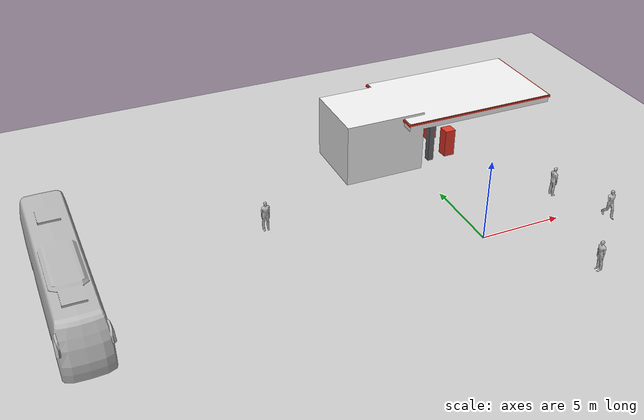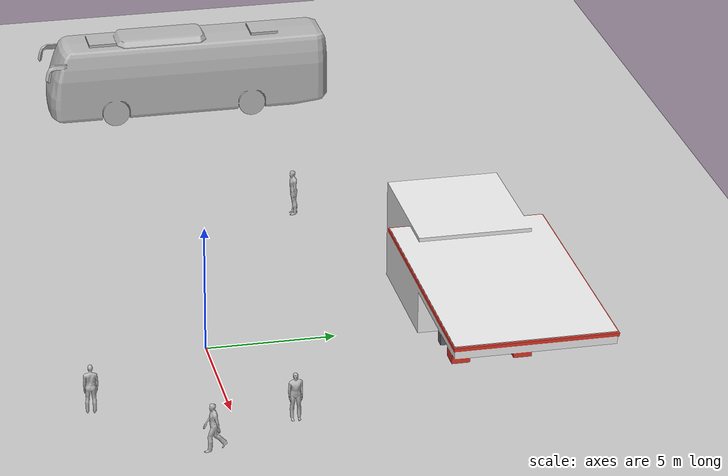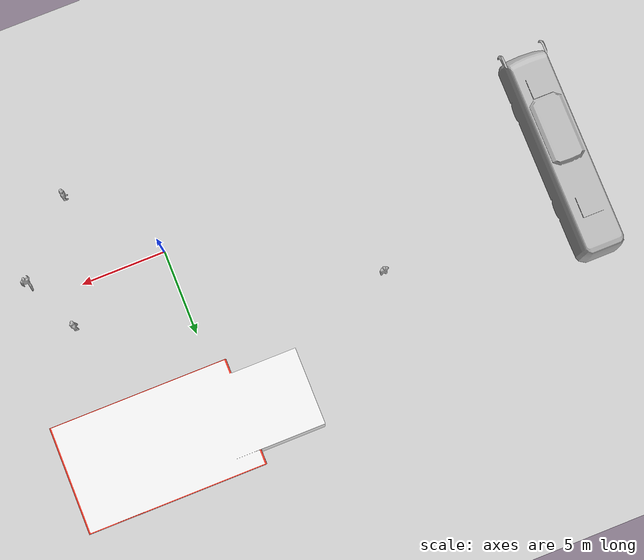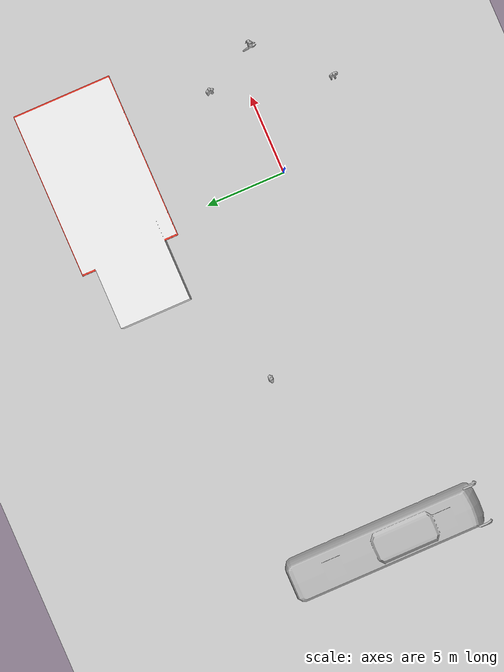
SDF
<sdf version="1.6">
 <world name="default">
  <light name="sun" type="directional">
   <pose>0 0 10 0 -0 0</pose>
   <diffuse>0.8 0.8 0.8 1</diffuse>
   <specular>0.2 0.2 0.2 1</specular>
   <attenuation>
    <range>1000</range>
    <constant>0.9</constant>
    <linear>0.01</linear>
    <quadratic>0.001</quadratic>
   </attenuation>
   <direction>-0.5 0.1 -0.9</direction>
  </light>
  <model name="ground_plane">
   <static>1</static>
   <link name="link">
    <collision name="collision">
     <geometry><plane><normal>0 0 1</normal><size>100 100</size></plane></geometry>
     <surface>
      <contact><collide_bitmask>65535</collide_bitmask></contact>
      <friction><ode><mu>100</mu><mu2>50</mu2></ode></friction>
     </surface>
    </collision>
    <visual name="visual">
     <cast_shadows>0</cast_shadows>
     <geometry><plane><normal>0 0 1</normal><size>100 100</size></plane></geometry>
     <material>
      <script><uri>file://media/materials/scripts/gazebo.material</uri><name>Gazebo/Grey</name></script>
     </material>
    </visual>
   </link>
  </model>
  <gravity>0 0 -9.8</gravity>
  <magnetic_field>6e-06 2.3e-05 -4.2e-05</magnetic_field>
  <atmosphere type="adiabatic"/>
  <physics name="default_physics" default="0" type="ode">
   <max_step_size>0.001</max_step_size>
   <real_time_factor>1</real_time_factor>
   <real_time_update_rate>1000</real_time_update_rate>
  </physics>
  <scene><ambient>0.4 0.4 0.4 1</ambient><background>0.7 0.7 0.7 1</background><shadows>1</shadows></scene>
  <spherical_coordinates>
   <surface_model>EARTH_WGS84</surface_model>
   <latitude_deg>0</latitude_deg>
   <longitude_deg>0</longitude_deg>
   <elevation>0</elevation>
   <heading_deg>0</heading_deg>
  </spherical_coordinates>
  <model name="Gas Station">
   <static>1</static>
   <link name="link">
    <collision name="collision">
     <geometry><mesh><uri>model://gas_station/meshes/gas_station.dae</uri></mesh></geometry>
    </collision>
    <visual name="visual">
     <geometry><mesh><uri>model://gas_station/meshes/gas_station.dae</uri></mesh></geometry>
     <material>
      <script>
       <uri>model://gas_station/materials/scripts</uri>
       <uri>model://gas_station/materials/textures</uri>
       <name>GasStation/Diffuse</name>
      </script>
      <shader type="normal_map_tangent_space"><normal_map>GasStation_Normal.png</normal_map></shader>
     </material>
    </visual>
   </link>
   <pose>1.59874 10.3426 0 0 -0 0</pose>
  </model>
  <model name="person_standing">
   <link name="link">
    <inertial>
     <pose>0 -0.1 0.95 0 -0 0</pose>
     <mass>80</mass>
     <inertia><ixx>24.88</ixx><ixy>0</ixy><ixz>0</ixz><iyy>25.73</iyy><iyz>0</iyz><izz>2.48</izz></inertia>
    </inertial>
    <collision name="bottom">
     <pose>0 -0.1 0.01 0 -0 0</pose>
     <geometry><box><size>0.5 0.35 0.02</size></box></geometry>
    </collision>
    <collision name="person">
     <pose>0 0 0.02 0.04 -0 0</pose>
     <geometry><mesh><uri>model://person_standing/meshes/standing.dae</uri></mesh></geometry>
    </collision>
    <visual name="visual">
     <pose>0 0 0.02 0.04 -0 0</pose>
     <geometry><mesh><uri>model://person_standing/meshes/standing.dae</uri></mesh></geometry>
    </visual>
   </link>
   <pose>4.20191 -5.01471 -1e-06 -1e-06 -1e-06 -1.65433</pose>
  </model>
  <model name="bus">
   <static>1</static>
   <link name="link">
    <collision name="collision">
     <geometry><mesh><scale>0.01 0.01 0.01</scale><uri>model://bus/meshes/bus.obj</uri></mesh></geometry>
    </collision>
    <visual name="visual">
     <geometry><mesh><scale>0.01 0.01 0.01</scale><uri>model://bus/meshes/bus.obj</uri></mesh></geometry>
    </visual>
   </link>
   <pose>-22.7147 3.23867 0 0 -0 0</pose>
  </model>
  <model name="person_standing_0">
   <link name="link">
    <inertial>
     <pose>0 -0.1 0.95 0 -0 0</pose>
     <mass>80</mass>
     <inertia><ixx>24.88</ixx><ixy>0</ixy><ixz>0</ixz><iyy>25.73</iyy><iyz>0</iyz><izz>2.48</izz></inertia>
    </inertial>
    <collision name="bottom">
     <pose>0 -0.1 0.01 0 -0 0</pose>
     <geometry><box><size>0.5 0.35 0.02</size></box></geometry>
    </collision>
    <collision name="person">
     <pose>0 0 0.02 0.04 -0 0</pose>
     <geometry><mesh><uri>model://person_standing/meshes/standing.dae</uri></mesh></geometry>
    </collision>
    <visual name="visual">
     <pose>0 0 0.02 0.04 -0 0</pose>
     <geometry><mesh><uri>model://person_standing/meshes/standing.dae</uri></mesh></geometry>
    </visual>
   </link>
   <pose>-11.0757 5.76716 0 0 1e-06 -0.000137</pose>
  </model>
  <model name="person_standing_1">
   <link name="link">
    <inertial>
     <pose>0 -0.1 0.95 0 -0 0</pose>
     <mass>80</mass>
     <inertia><ixx>24.88</ixx><ixy>0</ixy><ixz>0</ixz><iyy>25.73</iyy><iyz>0</iyz><izz>2.48</izz></inertia>
    </inertial>
    <collision name="bottom">
     <pose>0 -0.1 0.01 0 -0 0</pose>
     <geometry><box><size>0.5 0.35 0.02</size></box></geometry>
    </collision>
    <collision name="person">
     <pose>0 0 0.02 0.04 -0 0</pose>
     <geometry><mesh><uri>model://person_standing/meshes/standing.dae</uri></mesh></geometry>
    </collision>
    <visual name="visual">
     <pose>0 0 0.02 0.04 -0 0</pose>
     <geometry><mesh><uri>model://person_standing/meshes/standing.dae</uri></mesh></geometry>
    </visual>
   </link>
   <pose>6.09527 2.17713 0 -1e-06 1e-06 1.54766</pose>
  </model>
  <model name="person_walking">
   <link name="link">
    <inertial>
     <pose>0 0 0.95 0 -0 0</pose>
     <mass>80</mass>
     <inertia><ixx>27.82</ixx><ixy>0</ixy><ixz>0</ixz><iyy>24.88</iyy><iyz>0</iyz><izz>4.57</izz></inertia>
    </inertial>
    <collision name="bottom">
     <pose>0 0 0.01 0 -0 0</pose>
     <geometry><box><size>0.35 0.75 0.02</size></box></geometry>
    </collision>
    <collision name="person">
     <pose>0 0 -0.02 0 -0 0</pose>
     <geometry><mesh><uri>model://person_walking/meshes/walking.dae</uri></mesh></geometry>
    </collision>
    <visual name="visual">
     <pose>0 0 -0.02 0 -0 0</pose>
     <geometry><mesh><uri>model://person_walking/meshes/walking.dae</uri></mesh></geometry>
    </visual>
   </link>
   <pose>7.80325 -1.11657 0 -1e-06 -0 -0.000281</pose>
  </model>
 </world>
</sdf>
